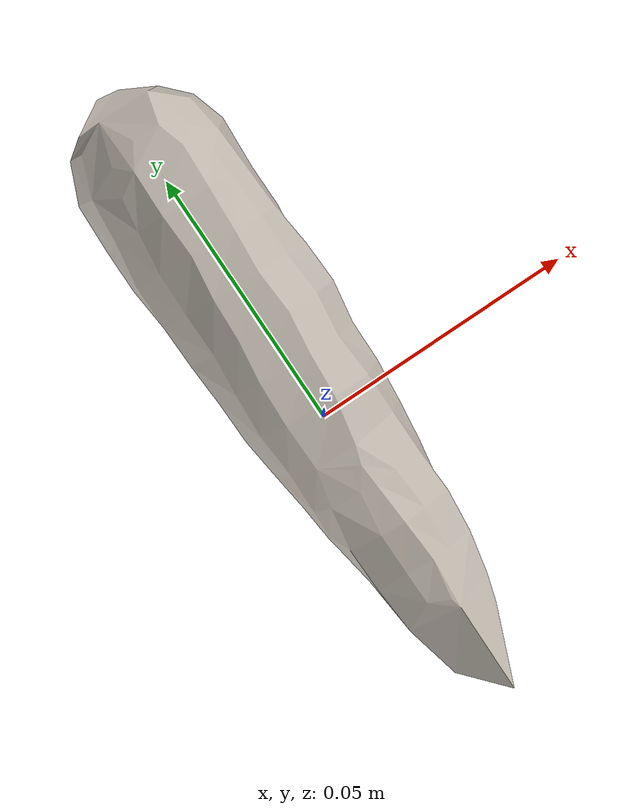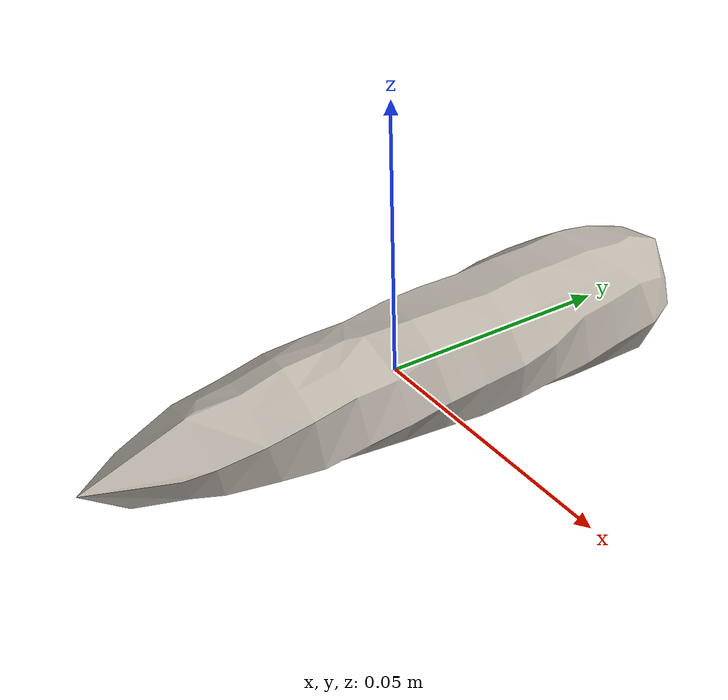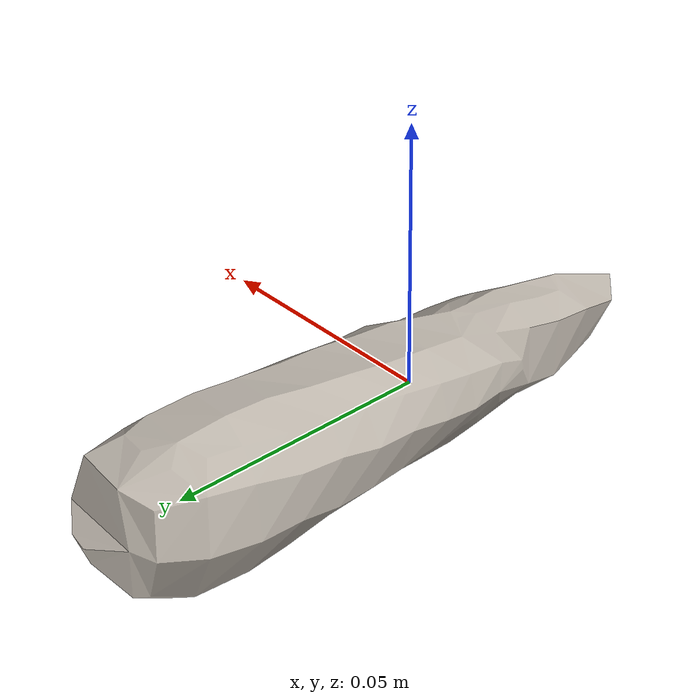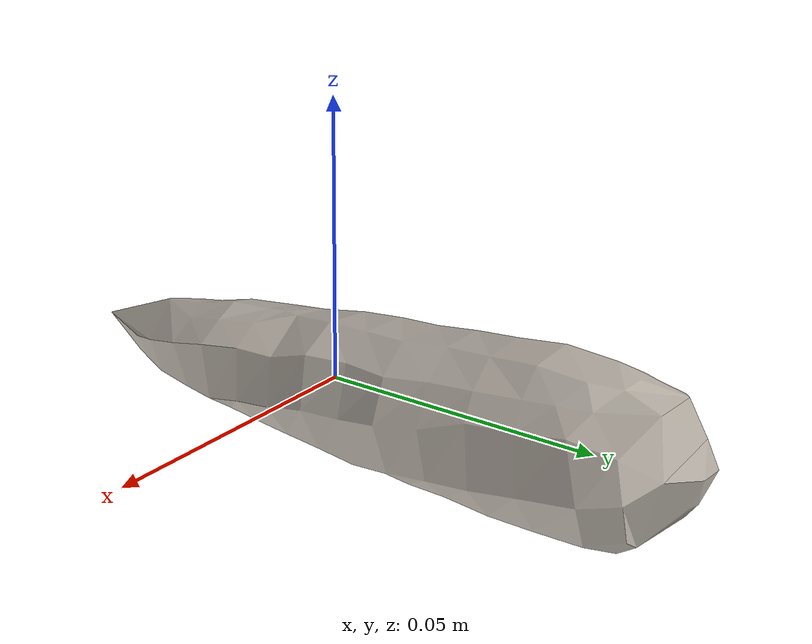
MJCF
<mujoco model="Carrot">
  <default>
    <default class="visual">
      <geom group="2" type="mesh" contype="0" conaffinity="0"/>
    </default>
    <default class="collision">
      <geom group="3" rgba="0 0 1 1"/>
    </default>
  </default>
  <asset>
    <texture type="2d" name="texture" file="texture.png"/>
    <material name="Material.002" texture="texture" specular="0.5" shininess="0.25"/>
    <mesh file="Carrot.obj"/>
  </asset>
  <worldbody>
    <body name="Carrot">
      <geom material="Material.002" mesh="Carrot" class="visual"/>
      <body name="collision" euler="90 0 0" >
        <geom pos="0 0 -0.03" type="capsule" size="0.0125 0.018" class="collision"/>
        <geom pos="0 0 0.025" type="capsule" size="0.0075 0.020" class="collision"/>
      </body>
    </body>
  </worldbody>
</mujoco>
